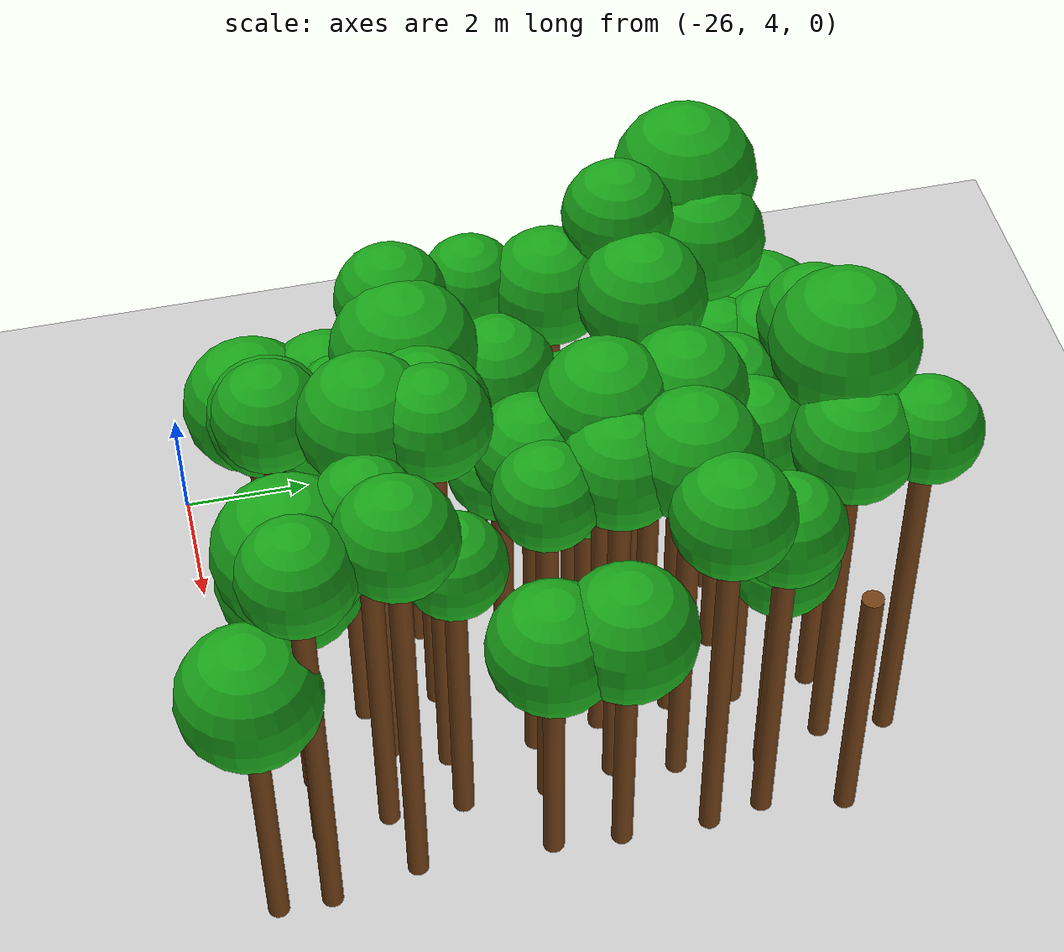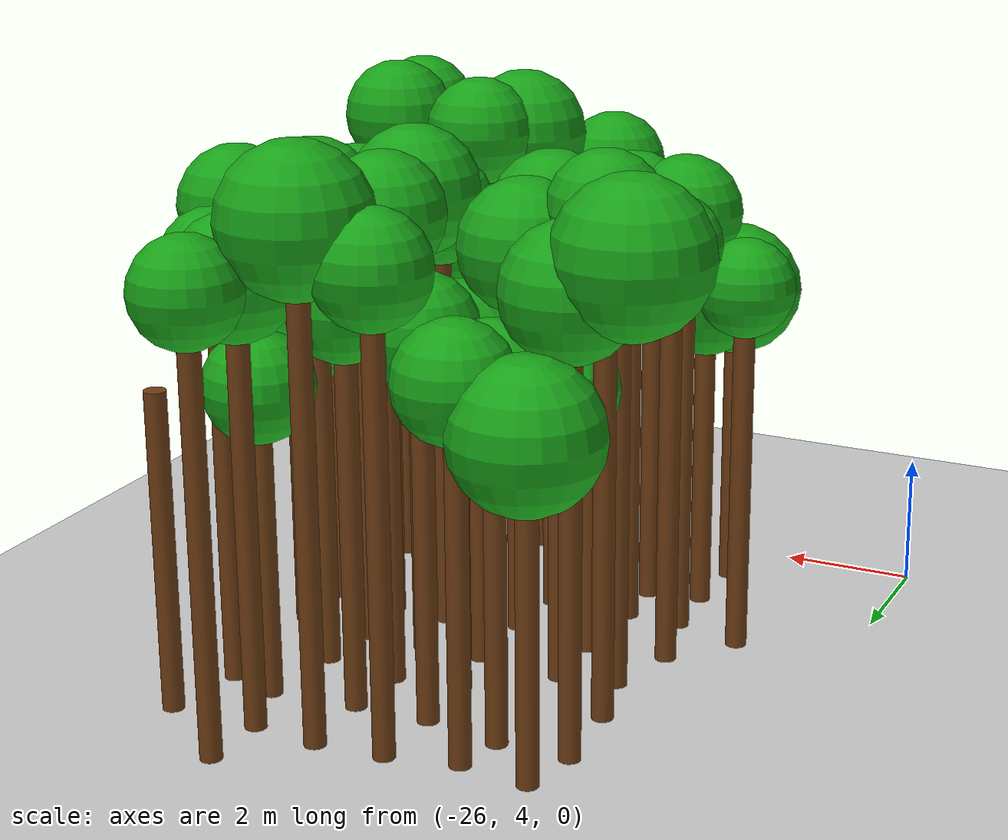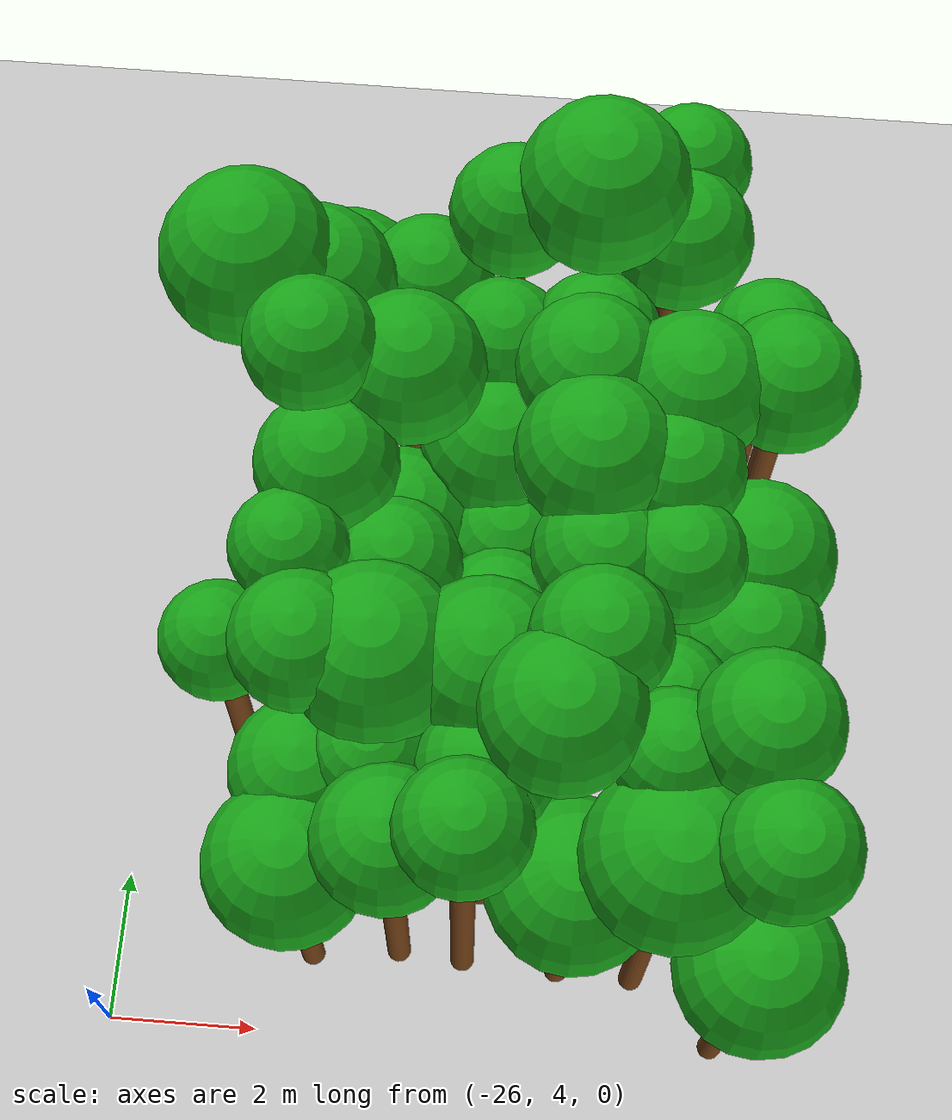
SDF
<sdf version="1.6">
 <world name="forest_world">
  <include><uri>model://sun</uri></include>
  <include><uri>model://ground_plane</uri></include>
  <model name="tree_309_trunk">
   <static>true</static>
   <pose>-24.34 7.55 2.59 0 0 0</pose>
   <link name="link">
    <collision name="collision">
     <geometry><cylinder><radius>0.16</radius><length>5.18</length></cylinder></geometry>
    </collision>
    <visual name="visual">
     <geometry><cylinder><radius>0.16</radius><length>5.18</length></cylinder></geometry>
     <material><ambient>0.35 0.20 0.05 1</ambient><diffuse>0.45 0.25 0.08 1</diffuse></material>
    </visual>
   </link>
  </model>
  <model name="tree_309_leaf">
   <static>true</static>
   <pose>-24.34 7.55 5.62 0 0 0</pose>
   <link name="link">
    <collision name="collision"><geometry><sphere><radius>0.73</radius></sphere></geometry></collision>
    <visual name="visual">
     <geometry><sphere><radius>0.73</radius></sphere></geometry>
     <material><ambient>0.05 0.45 0.05 1</ambient><diffuse>0.10 0.65 0.10 1</diffuse></material>
    </visual>
   </link>
  </model>
  <model name="tree_313_leaf">
   <static>true</static>
   <pose>-24.37 11.88 7.12 0 0 0</pose>
   <link name="link">
    <collision name="collision"><geometry><sphere><radius>1.08</radius></sphere></geometry></collision>
    <visual name="visual">
     <geometry><sphere><radius>1.08</radius></sphere></geometry>
     <material><ambient>0.05 0.45 0.05 1</ambient><diffuse>0.10 0.65 0.10 1</diffuse></material>
    </visual>
   </link>
  </model>
  <model name="tree_362_trunk">
   <static>true</static>
   <pose>-23.32 5.11 2.14 0 0 0</pose>
   <link name="link">
    <collision name="collision">
     <geometry><cylinder><radius>0.16</radius><length>4.27</length></cylinder></geometry>
    </collision>
    <visual name="visual">
     <geometry><cylinder><radius>0.16</radius><length>4.27</length></cylinder></geometry>
     <material><ambient>0.35 0.20 0.05 1</ambient><diffuse>0.45 0.25 0.08 1</diffuse></material>
    </visual>
   </link>
  </model>
  <model name="tree_362_leaf">
   <static>true</static>
   <pose>-23.32 5.11 4.88 0 0 0</pose>
   <link name="link">
    <collision name="collision"><geometry><sphere><radius>1.02</radius></sphere></geometry></collision>
    <visual name="visual">
     <geometry><sphere><radius>1.02</radius></sphere></geometry>
     <material><ambient>0.05 0.45 0.05 1</ambient><diffuse>0.10 0.65 0.10 1</diffuse></material>
    </visual>
   </link>
  </model>
  <model name="tree_363_trunk">
   <static>true</static>
   <pose>-23.24 6.21 2.24 0 0 0</pose>
   <link name="link">
    <collision name="collision">
     <geometry><cylinder><radius>0.16</radius><length>4.48</length></cylinder></geometry>
    </collision>
    <visual name="visual">
     <geometry><cylinder><radius>0.16</radius><length>4.48</length></cylinder></geometry>
     <material><ambient>0.35 0.20 0.05 1</ambient><diffuse>0.45 0.25 0.08 1</diffuse></material>
    </visual>
   </link>
  </model>
  <model name="tree_363_leaf">
   <static>true</static>
   <pose>-23.24 6.21 5.02 0 0 0</pose>
   <link name="link">
    <collision name="collision"><geometry><sphere><radius>0.90</radius></sphere></geometry></collision>
    <visual name="visual">
     <geometry><sphere><radius>0.90</radius></sphere></geometry>
     <material><ambient>0.05 0.45 0.05 1</ambient><diffuse>0.10 0.65 0.10 1</diffuse></material>
    </visual>
   </link>
  </model>
  <model name="tree_364_trunk">
   <static>true</static>
   <pose>-23.29 7.26 3.05 0 0 0</pose>
   <link name="link">
    <collision name="collision">
     <geometry><cylinder><radius>0.16</radius><length>6.10</length></cylinder></geometry>
    </collision>
    <visual name="visual">
     <geometry><cylinder><radius>0.16</radius><length>6.10</length></cylinder></geometry>
     <material><ambient>0.35 0.20 0.05 1</ambient><diffuse>0.45 0.25 0.08 1</diffuse></material>
    </visual>
   </link>
  </model>
  <model name="tree_364_leaf">
   <static>true</static>
   <pose>-23.29 7.26 6.59 0 0 0</pose>
   <link name="link">
    <collision name="collision"><geometry><sphere><radius>0.83</radius></sphere></geometry></collision>
    <visual name="visual">
     <geometry><sphere><radius>0.83</radius></sphere></geometry>
     <material><ambient>0.05 0.45 0.05 1</ambient><diffuse>0.10 0.65 0.10 1</diffuse></material>
    </visual>
   </link>
  </model>
  <model name="tree_365_trunk">
   <static>true</static>
   <pose>-23.56 8.47 2.99 0 0 0</pose>
   <link name="link">
    <collision name="collision">
     <geometry><cylinder><radius>0.16</radius><length>5.97</length></cylinder></geometry>
    </collision>
    <visual name="visual">
     <geometry><cylinder><radius>0.16</radius><length>5.97</length></cylinder></geometry>
     <material><ambient>0.35 0.20 0.05 1</ambient><diffuse>0.45 0.25 0.08 1</diffuse></material>
    </visual>
   </link>
  </model>
  <model name="tree_365_leaf">
   <static>true</static>
   <pose>-23.56 8.47 6.41 0 0 0</pose>
   <link name="link">
    <collision name="collision"><geometry><sphere><radius>0.72</radius></sphere></geometry></collision>
    <visual name="visual">
     <geometry><sphere><radius>0.72</radius></sphere></geometry>
     <material><ambient>0.05 0.45 0.05 1</ambient><diffuse>0.10 0.65 0.10 1</diffuse></material>
    </visual>
   </link>
  </model>
  <model name="tree_366_trunk">
   <static>true</static>
   <pose>-23.23 9.57 2.94 0 0 0</pose>
   <link name="link">
    <collision name="collision">
     <geometry><cylinder><radius>0.16</radius><length>5.88</length></cylinder></geometry>
    </collision>
    <visual name="visual">
     <geometry><cylinder><radius>0.16</radius><length>5.88</length></cylinder></geometry>
     <material><ambient>0.35 0.20 0.05 1</ambient><diffuse>0.45 0.25 0.08 1</diffuse></material>
    </visual>
   </link>
  </model>
  <model name="tree_366_leaf">
   <static>true</static>
   <pose>-23.23 9.57 6.41 0 0 0</pose>
   <link name="link">
    <collision name="collision"><geometry><sphere><radius>0.88</radius></sphere></geometry></collision>
    <visual name="visual">
     <geometry><sphere><radius>0.88</radius></sphere></geometry>
     <material><ambient>0.05 0.45 0.05 1</ambient><diffuse>0.10 0.65 0.10 1</diffuse></material>
    </visual>
   </link>
  </model>
  <model name="tree_367_trunk">
   <static>true</static>
   <pose>-23.47 10.63 3.44 0 0 0</pose>
   <link name="link">
    <collision name="collision">
     <geometry><cylinder><radius>0.16</radius><length>6.88</length></cylinder></geometry>
    </collision>
    <visual name="visual">
     <geometry><cylinder><radius>0.16</radius><length>6.88</length></cylinder></geometry>
     <material><ambient>0.35 0.20 0.05 1</ambient><diffuse>0.45 0.25 0.08 1</diffuse></material>
    </visual>
   </link>
  </model>
  <model name="tree_367_leaf">
   <static>true</static>
   <pose>-23.47 10.63 7.37 0 0 0</pose>
   <link name="link">
    <collision name="collision"><geometry><sphere><radius>0.81</radius></sphere></geometry></collision>
    <visual name="visual">
     <geometry><sphere><radius>0.81</radius></sphere></geometry>
     <material><ambient>0.05 0.45 0.05 1</ambient><diffuse>0.10 0.65 0.10 1</diffuse></material>
    </visual>
   </link>
  </model>
  <model name="tree_368_trunk">
   <static>true</static>
   <pose>-23.55 11.93 3.01 0 0 0</pose>
   <link name="link">
    <collision name="collision">
     <geometry><cylinder><radius>0.16</radius><length>6.02</length></cylinder></geometry>
    </collision>
    <visual name="visual">
     <geometry><cylinder><radius>0.16</radius><length>6.02</length></cylinder></geometry>
     <material><ambient>0.35 0.20 0.05 1</ambient><diffuse>0.45 0.25 0.08 1</diffuse></material>
    </visual>
   </link>
  </model>
  <model name="tree_368_leaf">
   <static>true</static>
   <pose>-23.55 11.93 6.59 0 0 0</pose>
   <link name="link">
    <collision name="collision"><geometry><sphere><radius>0.95</radius></sphere></geometry></collision>
    <visual name="visual">
     <geometry><sphere><radius>0.95</radius></sphere></geometry>
     <material><ambient>0.05 0.45 0.05 1</ambient><diffuse>0.10 0.65 0.10 1</diffuse></material>
    </visual>
   </link>
  </model>
  <model name="tree_369_trunk">
   <static>true</static>
   <pose>-23.35 12.83 2.14 0 0 0</pose>
   <link name="link">
    <collision name="collision">
     <geometry><cylinder><radius>0.16</radius><length>4.28</length></cylinder></geometry>
    </collision>
    <visual name="visual">
     <geometry><cylinder><radius>0.16</radius><length>4.28</length></cylinder></geometry>
     <material><ambient>0.35 0.20 0.05 1</ambient><diffuse>0.45 0.25 0.08 1</diffuse></material>
    </visual>
   </link>
  </model>
  <model name="tree_369_leaf">
   <static>true</static>
   <pose>-23.35 12.83 4.92 0 0 0</pose>
   <link name="link">
    <collision name="collision"><geometry><sphere><radius>1.06</radius></sphere></geometry></collision>
    <visual name="visual">
     <geometry><sphere><radius>1.06</radius></sphere></geometry>
     <material><ambient>0.05 0.45 0.05 1</ambient><diffuse>0.10 0.65 0.10 1</diffuse></material>
    </visual>
   </link>
  </model>
  <model name="tree_417_trunk">
   <static>true</static>
   <pose>-22.14 5.25 2.63 0 0 0</pose>
   <link name="link">
    <collision name="collision">
     <geometry><cylinder><radius>0.16</radius><length>5.26</length></cylinder></geometry>
    </collision>
    <visual name="visual">
     <geometry><cylinder><radius>0.16</radius><length>5.26</length></cylinder></geometry>
     <material><ambient>0.35 0.20 0.05 1</ambient><diffuse>0.45 0.25 0.08 1</diffuse></material>
    </visual>
   </link>
  </model>
  <model name="tree_417_leaf">
   <static>true</static>
   <pose>-22.14 5.25 5.79 0 0 0</pose>
   <link name="link">
    <collision name="collision"><geometry><sphere><radius>0.89</radius></sphere></geometry></collision>
    <visual name="visual">
     <geometry><sphere><radius>0.89</radius></sphere></geometry>
     <material><ambient>0.05 0.45 0.05 1</ambient><diffuse>0.10 0.65 0.10 1</diffuse></material>
    </visual>
   </link>
  </model>
  <model name="tree_418_trunk">
   <static>true</static>
   <pose>-22.42 6.35 2.55 0 0 0</pose>
   <link name="link">
    <collision name="collision">
     <geometry><cylinder><radius>0.16</radius><length>5.11</length></cylinder></geometry>
    </collision>
    <visual name="visual">
     <geometry><cylinder><radius>0.16</radius><length>5.11</length></cylinder></geometry>
     <material><ambient>0.35 0.20 0.05 1</ambient><diffuse>0.45 0.25 0.08 1</diffuse></material>
    </visual>
   </link>
  </model>
  <model name="tree_418_leaf">
   <static>true</static>
   <pose>-22.42 6.35 5.54 0 0 0</pose>
   <link name="link">
    <collision name="collision"><geometry><sphere><radius>0.72</radius></sphere></geometry></collision>
    <visual name="visual">
     <geometry><sphere><radius>0.72</radius></sphere></geometry>
     <material><ambient>0.05 0.45 0.05 1</ambient><diffuse>0.10 0.65 0.10 1</diffuse></material>
    </visual>
   </link>
  </model>
  <model name="tree_419_trunk">
   <static>true</static>
   <pose>-22.45 7.28 2.84 0 0 0</pose>
   <link name="link">
    <collision name="collision">
     <geometry><cylinder><radius>0.16</radius><length>5.67</length></cylinder></geometry>
    </collision>
    <visual name="visual">
     <geometry><cylinder><radius>0.16</radius><length>5.67</length></cylinder></geometry>
     <material><ambient>0.35 0.20 0.05 1</ambient><diffuse>0.45 0.25 0.08 1</diffuse></material>
    </visual>
   </link>
  </model>
  <model name="tree_419_leaf">
   <static>true</static>
   <pose>-22.45 7.28 6.32 0 0 0</pose>
   <link name="link">
    <collision name="collision"><geometry><sphere><radius>1.08</radius></sphere></geometry></collision>
    <visual name="visual">
     <geometry><sphere><radius>1.08</radius></sphere></geometry>
     <material><ambient>0.05 0.45 0.05 1</ambient><diffuse>0.10 0.65 0.10 1</diffuse></material>
    </visual>
   </link>
  </model>
  <model name="tree_420_trunk">
   <static>true</static>
   <pose>-22.36 8.62 2.62 0 0 0</pose>
   <link name="link">
    <collision name="collision">
     <geometry><cylinder><radius>0.16</radius><length>5.25</length></cylinder></geometry>
    </collision>
    <visual name="visual">
     <geometry><cylinder><radius>0.16</radius><length>5.25</length></cylinder></geometry>
     <material><ambient>0.35 0.20 0.05 1</ambient><diffuse>0.45 0.25 0.08 1</diffuse></material>
    </visual>
   </link>
  </model>
  <model name="tree_420_leaf">
   <static>true</static>
   <pose>-22.36 8.62 5.75 0 0 0</pose>
   <link name="link">
    <collision name="collision"><geometry><sphere><radius>0.83</radius></sphere></geometry></collision>
    <visual name="visual">
     <geometry><sphere><radius>0.83</radius></sphere></geometry>
     <material><ambient>0.05 0.45 0.05 1</ambient><diffuse>0.10 0.65 0.10 1</diffuse></material>
    </visual>
   </link>
  </model>
  <model name="tree_421_trunk">
   <static>true</static>
   <pose>-22.38 9.73 2.01 0 0 0</pose>
   <link name="link">
    <collision name="collision">
     <geometry><cylinder><radius>0.16</radius><length>4.01</length></cylinder></geometry>
    </collision>
    <visual name="visual">
     <geometry><cylinder><radius>0.16</radius><length>4.01</length></cylinder></geometry>
     <material><ambient>0.35 0.20 0.05 1</ambient><diffuse>0.45 0.25 0.08 1</diffuse></material>
    </visual>
   </link>
  </model>
  <model name="tree_421_leaf">
   <static>true</static>
   <pose>-22.38 9.73 4.58 0 0 0</pose>
   <link name="link">
    <collision name="collision"><geometry><sphere><radius>0.95</radius></sphere></geometry></collision>
    <visual name="visual">
     <geometry><sphere><radius>0.95</radius></sphere></geometry>
     <material><ambient>0.05 0.45 0.05 1</ambient><diffuse>0.10 0.65 0.10 1</diffuse></material>
    </visual>
   </link>
  </model>
  <model name="tree_422_trunk">
   <static>true</static>
   <pose>-22.35 10.73 3.11 0 0 0</pose>
   <link name="link">
    <collision name="collision">
     <geometry><cylinder><radius>0.16</radius><length>6.22</length></cylinder></geometry>
    </collision>
    <visual name="visual">
     <geometry><cylinder><radius>0.16</radius><length>6.22</length></cylinder></geometry>
     <material><ambient>0.35 0.20 0.05 1</ambient><diffuse>0.45 0.25 0.08 1</diffuse></material>
    </visual>
   </link>
  </model>
  <model name="tree_422_leaf">
   <static>true</static>
   <pose>-22.35 10.73 6.78 0 0 0</pose>
   <link name="link">
    <collision name="collision"><geometry><sphere><radius>0.94</radius></sphere></geometry></collision>
    <visual name="visual">
     <geometry><sphere><radius>0.94</radius></sphere></geometry>
     <material><ambient>0.05 0.45 0.05 1</ambient><diffuse>0.10 0.65 0.10 1</diffuse></material>
    </visual>
   </link>
  </model>
  <model name="tree_423_trunk">
   <static>true</static>
   <pose>-22.47 11.97 2.42 0 0 0</pose>
   <link name="link">
    <collision name="collision">
     <geometry><cylinder><radius>0.16</radius><length>4.83</length></cylinder></geometry>
    </collision>
    <visual name="visual">
     <geometry><cylinder><radius>0.16</radius><length>4.83</length></cylinder></geometry>
     <material><ambient>0.35 0.20 0.05 1</ambient><diffuse>0.45 0.25 0.08 1</diffuse></material>
    </visual>
   </link>
  </model>
  <model name="tree_423_leaf">
   <static>true</static>
   <pose>-22.47 11.97 5.31 0 0 0</pose>
   <link name="link">
    <collision name="collision"><geometry><sphere><radius>0.80</radius></sphere></geometry></collision>
    <visual name="visual">
     <geometry><sphere><radius>0.80</radius></sphere></geometry>
     <material><ambient>0.05 0.45 0.05 1</ambient><diffuse>0.10 0.65 0.10 1</diffuse></material>
    </visual>
   </link>
  </model>
  <model name="tree_424_trunk">
   <static>true</static>
   <pose>-22.29 12.72 2.47 0 0 0</pose>
   <link name="link">
    <collision name="collision">
     <geometry><cylinder><radius>0.16</radius><length>4.94</length></cylinder></geometry>
    </collision>
    <visual name="visual">
     <geometry><cylinder><radius>0.16</radius><length>4.94</length></cylinder></geometry>
     <material><ambient>0.35 0.20 0.05 1</ambient><diffuse>0.45 0.25 0.08 1</diffuse></material>
    </visual>
   </link>
  </model>
  <model name="tree_424_leaf">
   <static>true</static>
   <pose>-22.29 12.72 5.45 0 0 0</pose>
   <link name="link">
    <collision name="collision"><geometry><sphere><radius>0.85</radius></sphere></geometry></collision>
    <visual name="visual">
     <geometry><sphere><radius>0.85</radius></sphere></geometry>
     <material><ambient>0.05 0.45 0.05 1</ambient><diffuse>0.10 0.65 0.10 1</diffuse></material>
    </visual>
   </link>
  </model>
  <model name="tree_472_trunk">
   <static>true</static>
   <pose>-21.26 5.19 3.12 0 0 0</pose>
   <link name="link">
    <collision name="collision">
     <geometry><cylinder><radius>0.16</radius><length>6.24</length></cylinder></geometry>
    </collision>
    <visual name="visual">
     <geometry><cylinder><radius>0.16</radius><length>6.24</length></cylinder></geometry>
     <material><ambient>0.35 0.20 0.05 1</ambient><diffuse>0.45 0.25 0.08 1</diffuse></material>
    </visual>
   </link>
  </model>
  <model name="tree_472_leaf">
   <static>true</static>
   <pose>-21.26 5.19 6.72 0 0 0</pose>
   <link name="link">
    <collision name="collision"><geometry><sphere><radius>0.80</radius></sphere></geometry></collision>
    <visual name="visual">
     <geometry><sphere><radius>0.80</radius></sphere></geometry>
     <material><ambient>0.05 0.45 0.05 1</ambient><diffuse>0.10 0.65 0.10 1</diffuse></material>
    </visual>
   </link>
  </model>
  <model name="tree_473_trunk">
   <static>true</static>
   <pose>-21.08 6.14 2.68 0 0 0</pose>
   <link name="link">
    <collision name="collision">
     <geometry><cylinder><radius>0.16</radius><length>5.36</length></cylinder></geometry>
    </collision>
    <visual name="visual">
     <geometry><cylinder><radius>0.16</radius><length>5.36</length></cylinder></geometry>
     <material><ambient>0.35 0.20 0.05 1</ambient><diffuse>0.45 0.25 0.08 1</diffuse></material>
    </visual>
   </link>
  </model>
  <model name="tree_473_leaf">
   <static>true</static>
   <pose>-21.08 6.14 5.86 0 0 0</pose>
   <link name="link">
    <collision name="collision"><geometry><sphere><radius>0.83</radius></sphere></geometry></collision>
    <visual name="visual">
     <geometry><sphere><radius>0.83</radius></sphere></geometry>
     <material><ambient>0.05 0.45 0.05 1</ambient><diffuse>0.10 0.65 0.10 1</diffuse></material>
    </visual>
   </link>
  </model>
  <model name="tree_474_trunk">
   <static>true</static>
   <pose>-21.16 7.29 2.87 0 0 0</pose>
   <link name="link">
    <collision name="collision">
     <geometry><cylinder><radius>0.16</radius><length>5.75</length></cylinder></geometry>
    </collision>
    <visual name="visual">
     <geometry><cylinder><radius>0.16</radius><length>5.75</length></cylinder></geometry>
     <material><ambient>0.35 0.20 0.05 1</ambient><diffuse>0.45 0.25 0.08 1</diffuse></material>
    </visual>
   </link>
  </model>
  <model name="tree_474_leaf">
   <static>true</static>
   <pose>-21.16 7.29 6.34 0 0 0</pose>
   <link name="link">
    <collision name="collision"><geometry><sphere><radius>0.98</radius></sphere></geometry></collision>
    <visual name="visual">
     <geometry><sphere><radius>0.98</radius></sphere></geometry>
     <material><ambient>0.05 0.45 0.05 1</ambient><diffuse>0.10 0.65 0.10 1</diffuse></material>
    </visual>
   </link>
  </model>
  <model name="tree_475_trunk">
   <static>true</static>
   <pose>-21.07 8.37 2.32 0 0 0</pose>
   <link name="link">
    <collision name="collision">
     <geometry><cylinder><radius>0.16</radius><length>4.64</length></cylinder></geometry>
    </collision>
    <visual name="visual">
     <geometry><cylinder><radius>0.16</radius><length>4.64</length></cylinder></geometry>
     <material><ambient>0.35 0.20 0.05 1</ambient><diffuse>0.45 0.25 0.08 1</diffuse></material>
    </visual>
   </link>
  </model>
  <model name="tree_475_leaf">
   <static>true</static>
   <pose>-21.07 8.37 5.12 0 0 0</pose>
   <link name="link">
    <collision name="collision"><geometry><sphere><radius>0.79</radius></sphere></geometry></collision>
    <visual name="visual">
     <geometry><sphere><radius>0.79</radius></sphere></geometry>
     <material><ambient>0.05 0.45 0.05 1</ambient><diffuse>0.10 0.65 0.10 1</diffuse></material>
    </visual>
   </link>
  </model>
  <model name="tree_476_trunk">
   <static>true</static>
   <pose>-21.05 9.62 2.01 0 0 0</pose>
   <link name="link">
    <collision name="collision">
     <geometry><cylinder><radius>0.16</radius><length>4.01</length></cylinder></geometry>
    </collision>
    <visual name="visual">
     <geometry><cylinder><radius>0.16</radius><length>4.01</length></cylinder></geometry>
     <material><ambient>0.35 0.20 0.05 1</ambient><diffuse>0.45 0.25 0.08 1</diffuse></material>
    </visual>
   </link>
  </model>
  <model name="tree_476_leaf">
   <static>true</static>
   <pose>-21.05 9.62 4.52 0 0 0</pose>
   <link name="link">
    <collision name="collision"><geometry><sphere><radius>0.84</radius></sphere></geometry></collision>
    <visual name="visual">
     <geometry><sphere><radius>0.84</radius></sphere></geometry>
     <material><ambient>0.05 0.45 0.05 1</ambient><diffuse>0.10 0.65 0.10 1</diffuse></material>
    </visual>
   </link>
  </model>
  <model name="tree_477_trunk">
   <static>true</static>
   <pose>-21.23 10.64 2.27 0 0 0</pose>
   <link name="link">
    <collision name="collision">
     <geometry><cylinder><radius>0.16</radius><length>4.54</length></cylinder></geometry>
    </collision>
    <visual name="visual">
     <geometry><cylinder><radius>0.16</radius><length>4.54</length></cylinder></geometry>
     <material><ambient>0.35 0.20 0.05 1</ambient><diffuse>0.45 0.25 0.08 1</diffuse></material>
    </visual>
   </link>
  </model>
  <model name="tree_477_leaf">
   <static>true</static>
   <pose>-21.23 10.64 5.14 0 0 0</pose>
   <link name="link">
    <collision name="collision"><geometry><sphere><radius>1.01</radius></sphere></geometry></collision>
    <visual name="visual">
     <geometry><sphere><radius>1.01</radius></sphere></geometry>
     <material><ambient>0.05 0.45 0.05 1</ambient><diffuse>0.10 0.65 0.10 1</diffuse></material>
    </visual>
   </link>
  </model>
  <model name="tree_478_trunk">
   <static>true</static>
   <pose>-21.28 11.74 2.62 0 0 0</pose>
   <link name="link">
    <collision name="collision">
     <geometry><cylinder><radius>0.16</radius><length>5.25</length></cylinder></geometry>
    </collision>
    <visual name="visual">
     <geometry><cylinder><radius>0.16</radius><length>5.25</length></cylinder></geometry>
     <material><ambient>0.35 0.20 0.05 1</ambient><diffuse>0.45 0.25 0.08 1</diffuse></material>
    </visual>
   </link>
  </model>
  <model name="tree_478_leaf">
   <static>true</static>
   <pose>-21.28 11.74 5.74 0 0 0</pose>
   <link name="link">
    <collision name="collision"><geometry><sphere><radius>0.82</radius></sphere></geometry></collision>
    <visual name="visual">
     <geometry><sphere><radius>0.82</radius></sphere></geometry>
     <material><ambient>0.05 0.45 0.05 1</ambient><diffuse>0.10 0.65 0.10 1</diffuse></material>
    </visual>
   </link>
  </model>
  <model name="tree_479_trunk">
   <static>true</static>
   <pose>-21.24 12.94 3.19 0 0 0</pose>
   <link name="link">
    <collision name="collision">
     <geometry><cylinder><radius>0.16</radius><length>6.38</length></cylinder></geometry>
    </collision>
    <visual name="visual">
     <geometry><cylinder><radius>0.16</radius><length>6.38</length></cylinder></geometry>
     <material><ambient>0.35 0.20 0.05 1</ambient><diffuse>0.45 0.25 0.08 1</diffuse></material>
    </visual>
   </link>
  </model>
  <model name="tree_479_leaf">
   <static>true</static>
   <pose>-21.24 12.94 6.87 0 0 0</pose>
   <link name="link">
    <collision name="collision"><geometry><sphere><radius>0.82</radius></sphere></geometry></collision>
    <visual name="visual">
     <geometry><sphere><radius>0.82</radius></sphere></geometry>
     <material><ambient>0.05 0.45 0.05 1</ambient><diffuse>0.10 0.65 0.10 1</diffuse></material>
    </visual>
   </link>
  </model>
  <model name="tree_527_trunk">
   <static>true</static>
   <pose>-19.96 5.14 2.09 0 0 0</pose>
   <link name="link">
    <collision name="collision">
     <geometry><cylinder><radius>0.16</radius><length>4.18</length></cylinder></geometry>
    </collision>
    <visual name="visual">
     <geometry><cylinder><radius>0.16</radius><length>4.18</length></cylinder></geometry>
     <material><ambient>0.35 0.20 0.05 1</ambient><diffuse>0.45 0.25 0.08 1</diffuse></material>
    </visual>
   </link>
  </model>
  <model name="tree_527_leaf">
   <static>true</static>
   <pose>-19.96 5.14 4.82 0 0 0</pose>
   <link name="link">
    <collision name="collision"><geometry><sphere><radius>1.07</radius></sphere></geometry></collision>
    <visual name="visual">
     <geometry><sphere><radius>1.07</radius></sphere></geometry>
     <material><ambient>0.05 0.45 0.05 1</ambient><diffuse>0.10 0.65 0.10 1</diffuse></material>
    </visual>
   </link>
  </model>
  <model name="tree_528_trunk">
   <static>true</static>
   <pose>-20.27 6.40 3.39 0 0 0</pose>
   <link name="link">
    <collision name="collision">
     <geometry><cylinder><radius>0.16</radius><length>6.78</length></cylinder></geometry>
    </collision>
    <visual name="visual">
     <geometry><cylinder><radius>0.16</radius><length>6.78</length></cylinder></geometry>
     <material><ambient>0.35 0.20 0.05 1</ambient><diffuse>0.45 0.25 0.08 1</diffuse></material>
    </visual>
   </link>
  </model>
  <model name="tree_528_leaf">
   <static>true</static>
   <pose>-20.27 6.40 7.35 0 0 0</pose>
   <link name="link">
    <collision name="collision"><geometry><sphere><radius>0.95</radius></sphere></geometry></collision>
    <visual name="visual">
     <geometry><sphere><radius>0.95</radius></sphere></geometry>
     <material><ambient>0.05 0.45 0.05 1</ambient><diffuse>0.10 0.65 0.10 1</diffuse></material>
    </visual>
   </link>
  </model>
  <model name="tree_529_trunk">
   <static>true</static>
   <pose>-19.92 7.23 3.50 0 0 0</pose>
   <link name="link">
    <collision name="collision">
     <geometry><cylinder><radius>0.16</radius><length>6.99</length></cylinder></geometry>
    </collision>
    <visual name="visual">
     <geometry><cylinder><radius>0.16</radius><length>6.99</length></cylinder></geometry>
     <material><ambient>0.35 0.20 0.05 1</ambient><diffuse>0.45 0.25 0.08 1</diffuse></material>
    </visual>
   </link>
  </model>
  <model name="tree_529_leaf">
   <static>true</static>
   <pose>-19.92 7.23 7.48 0 0 0</pose>
   <link name="link">
    <collision name="collision"><geometry><sphere><radius>0.81</radius></sphere></geometry></collision>
    <visual name="visual">
     <geometry><sphere><radius>0.81</radius></sphere></geometry>
     <material><ambient>0.05 0.45 0.05 1</ambient><diffuse>0.10 0.65 0.10 1</diffuse></material>
    </visual>
   </link>
  </model>
  <model name="tree_530_trunk">
   <static>true</static>
   <pose>-19.93 8.59 3.04 0 0 0</pose>
   <link name="link">
    <collision name="collision">
     <geometry><cylinder><radius>0.16</radius><length>6.08</length></cylinder></geometry>
    </collision>
    <visual name="visual">
     <geometry><cylinder><radius>0.16</radius><length>6.08</length></cylinder></geometry>
     <material><ambient>0.35 0.20 0.05 1</ambient><diffuse>0.45 0.25 0.08 1</diffuse></material>
    </visual>
   </link>
  </model>
  <model name="tree_530_leaf">
   <static>true</static>
   <pose>-19.93 8.59 6.58 0 0 0</pose>
   <link name="link">
    <collision name="collision"><geometry><sphere><radius>0.83</radius></sphere></geometry></collision>
    <visual name="visual">
     <geometry><sphere><radius>0.83</radius></sphere></geometry>
     <material><ambient>0.05 0.45 0.05 1</ambient><diffuse>0.10 0.65 0.10 1</diffuse></material>
    </visual>
   </link>
  </model>
  <model name="tree_531_trunk">
   <static>true</static>
   <pose>-20.09 9.63 3.26 0 0 0</pose>
   <link name="link">
    <collision name="collision">
     <geometry><cylinder><radius>0.16</radius><length>6.52</length></cylinder></geometry>
    </collision>
    <visual name="visual">
     <geometry><cylinder><radius>0.16</radius><length>6.52</length></cylinder></geometry>
     <material><ambient>0.35 0.20 0.05 1</ambient><diffuse>0.45 0.25 0.08 1</diffuse></material>
    </visual>
   </link>
  </model>
  <model name="tree_531_leaf">
   <static>true</static>
   <pose>-20.09 9.63 7.09 0 0 0</pose>
   <link name="link">
    <collision name="collision"><geometry><sphere><radius>0.95</radius></sphere></geometry></collision>
    <visual name="visual">
     <geometry><sphere><radius>0.95</radius></sphere></geometry>
     <material><ambient>0.05 0.45 0.05 1</ambient><diffuse>0.10 0.65 0.10 1</diffuse></material>
    </visual>
   </link>
  </model>
  <model name="tree_532_trunk">
   <static>true</static>
   <pose>-20.21 10.77 3.24 0 0 0</pose>
   <link name="link">
    <collision name="collision">
     <geometry><cylinder><radius>0.16</radius><length>6.48</length></cylinder></geometry>
    </collision>
    <visual name="visual">
     <geometry><cylinder><radius>0.16</radius><length>6.48</length></cylinder></geometry>
     <material><ambient>0.35 0.20 0.05 1</ambient><diffuse>0.45 0.25 0.08 1</diffuse></material>
    </visual>
   </link>
  </model>
  <model name="tree_532_leaf">
   <static>true</static>
   <pose>-20.21 10.77 7.01 0 0 0</pose>
   <link name="link">
    <collision name="collision"><geometry><sphere><radius>0.89</radius></sphere></geometry></collision>
    <visual name="visual">
     <geometry><sphere><radius>0.89</radius></sphere></geometry>
     <material><ambient>0.05 0.45 0.05 1</ambient><diffuse>0.10 0.65 0.10 1</diffuse></material>
    </visual>
   </link>
  </model>
  <model name="tree_533_trunk">
   <static>true</static>
   <pose>-20.14 11.78 2.74 0 0 0</pose>
   <link name="link">
    <collision name="collision">
     <geometry><cylinder><radius>0.16</radius><length>5.49</length></cylinder></geometry>
    </collision>
    <visual name="visual">
     <geometry><cylinder><radius>0.16</radius><length>5.49</length></cylinder></geometry>
     <material><ambient>0.35 0.20 0.05 1</ambient><diffuse>0.45 0.25 0.08 1</diffuse></material>
    </visual>
   </link>
  </model>
  <model name="tree_533_leaf">
   <static>true</static>
   <pose>-20.14 11.78 5.98 0 0 0</pose>
   <link name="link">
    <collision name="collision"><geometry><sphere><radius>0.82</radius></sphere></geometry></collision>
    <visual name="visual">
     <geometry><sphere><radius>0.82</radius></sphere></geometry>
     <material><ambient>0.05 0.45 0.05 1</ambient><diffuse>0.10 0.65 0.10 1</diffuse></material>
    </visual>
   </link>
  </model>
  <model name="tree_534_trunk">
   <static>true</static>
   <pose>-20.20 13.02 3.39 0 0 0</pose>
   <link name="link">
    <collision name="collision">
     <geometry><cylinder><radius>0.16</radius><length>6.78</length></cylinder></geometry>
    </collision>
    <visual name="visual">
     <geometry><cylinder><radius>0.16</radius><length>6.78</length></cylinder></geometry>
     <material><ambient>0.35 0.20 0.05 1</ambient><diffuse>0.45 0.25 0.08 1</diffuse></material>
    </visual>
   </link>
  </model>
  <model name="tree_534_leaf">
   <static>true</static>
   <pose>-20.20 13.02 7.42 0 0 0</pose>
   <link name="link">
    <collision name="collision"><geometry><sphere><radius>1.06</radius></sphere></geometry></collision>
    <visual name="visual">
     <geometry><sphere><radius>1.06</radius></sphere></geometry>
     <material><ambient>0.05 0.45 0.05 1</ambient><diffuse>0.10 0.65 0.10 1</diffuse></material>
    </visual>
   </link>
  </model>
  <model name="tree_582_trunk">
   <static>true</static>
   <pose>-18.93 5.11 2.93 0 0 0</pose>
   <link name="link">
    <collision name="collision">
     <geometry><cylinder><radius>0.16</radius><length>5.86</length></cylinder></geometry>
    </collision>
    <visual name="visual">
     <geometry><cylinder><radius>0.16</radius><length>5.86</length></cylinder></geometry>
     <material><ambient>0.35 0.20 0.05 1</ambient><diffuse>0.45 0.25 0.08 1</diffuse></material>
    </visual>
   </link>
  </model>
  <model name="tree_582_leaf">
   <static>true</static>
   <pose>-18.93 5.11 6.51 0 0 0</pose>
   <link name="link">
    <collision name="collision"><geometry><sphere><radius>1.08</radius></sphere></geometry></collision>
    <visual name="visual">
     <geometry><sphere><radius>1.08</radius></sphere></geometry>
     <material><ambient>0.05 0.45 0.05 1</ambient><diffuse>0.10 0.65 0.10 1</diffuse></material>
    </visual>
   </link>
  </model>
  <model name="tree_583_trunk">
   <static>true</static>
   <pose>-19.05 6.14 3.30 0 0 0</pose>
   <link name="link">
    <collision name="collision">
     <geometry><cylinder><radius>0.16</radius><length>6.59</length></cylinder></geometry>
    </collision>
    <visual name="visual">
     <geometry><cylinder><radius>0.16</radius><length>6.59</length></cylinder></geometry>
     <material><ambient>0.35 0.20 0.05 1</ambient><diffuse>0.45 0.25 0.08 1</diffuse></material>
    </visual>
   </link>
  </model>
  <model name="tree_583_leaf">
   <static>true</static>
   <pose>-19.05 6.14 7.03 0 0 0</pose>
   <link name="link">
    <collision name="collision"><geometry><sphere><radius>0.72</radius></sphere></geometry></collision>
    <visual name="visual">
     <geometry><sphere><radius>0.72</radius></sphere></geometry>
     <material><ambient>0.05 0.45 0.05 1</ambient><diffuse>0.10 0.65 0.10 1</diffuse></material>
    </visual>
   </link>
  </model>
  <model name="tree_584_trunk">
   <static>true</static>
   <pose>-19.03 7.28 2.56 0 0 0</pose>
   <link name="link">
    <collision name="collision">
     <geometry><cylinder><radius>0.16</radius><length>5.11</length></cylinder></geometry>
    </collision>
    <visual name="visual">
     <geometry><cylinder><radius>0.16</radius><length>5.11</length></cylinder></geometry>
     <material><ambient>0.35 0.20 0.05 1</ambient><diffuse>0.45 0.25 0.08 1</diffuse></material>
    </visual>
   </link>
  </model>
  <model name="tree_584_leaf">
   <static>true</static>
   <pose>-19.03 7.28 5.57 0 0 0</pose>
   <link name="link">
    <collision name="collision"><geometry><sphere><radius>0.76</radius></sphere></geometry></collision>
    <visual name="visual">
     <geometry><sphere><radius>0.76</radius></sphere></geometry>
     <material><ambient>0.05 0.45 0.05 1</ambient><diffuse>0.10 0.65 0.10 1</diffuse></material>
    </visual>
   </link>
  </model>
  <model name="tree_585_trunk">
   <static>true</static>
   <pose>-19.02 8.58 3.11 0 0 0</pose>
   <link name="link">
    <collision name="collision">
     <geometry><cylinder><radius>0.16</radius><length>6.21</length></cylinder></geometry>
    </collision>
    <visual name="visual">
     <geometry><cylinder><radius>0.16</radius><length>6.21</length></cylinder></geometry>
     <material><ambient>0.35 0.20 0.05 1</ambient><diffuse>0.45 0.25 0.08 1</diffuse></material>
    </visual>
   </link>
  </model>
  <model name="tree_585_leaf">
   <static>true</static>
   <pose>-19.02 8.58 6.67 0 0 0</pose>
   <link name="link">
    <collision name="collision"><geometry><sphere><radius>0.76</radius></sphere></geometry></collision>
    <visual name="visual">
     <geometry><sphere><radius>0.76</radius></sphere></geometry>
     <material><ambient>0.05 0.45 0.05 1</ambient><diffuse>0.10 0.65 0.10 1</diffuse></material>
    </visual>
   </link>
  </model>
  <model name="tree_586_trunk">
   <static>true</static>
   <pose>-19.17 9.63 3.15 0 0 0</pose>
   <link name="link">
    <collision name="collision">
     <geometry><cylinder><radius>0.16</radius><length>6.29</length></cylinder></geometry>
    </collision>
    <visual name="visual">
     <geometry><cylinder><radius>0.16</radius><length>6.29</length></cylinder></geometry>
     <material><ambient>0.35 0.20 0.05 1</ambient><diffuse>0.45 0.25 0.08 1</diffuse></material>
    </visual>
   </link>
  </model>
  <model name="tree_586_leaf">
   <static>true</static>
   <pose>-19.17 9.63 6.81 0 0 0</pose>
   <link name="link">
    <collision name="collision"><geometry><sphere><radius>0.86</radius></sphere></geometry></collision>
    <visual name="visual">
     <geometry><sphere><radius>0.86</radius></sphere></geometry>
     <material><ambient>0.05 0.45 0.05 1</ambient><diffuse>0.10 0.65 0.10 1</diffuse></material>
    </visual>
   </link>
  </model>
  <model name="tree_587_trunk">
   <static>true</static>
   <pose>-19.01 10.59 3.23 0 0 0</pose>
   <link name="link">
    <collision name="collision">
     <geometry><cylinder><radius>0.16</radius><length>6.46</length></cylinder></geometry>
    </collision>
    <visual name="visual">
     <geometry><cylinder><radius>0.16</radius><length>6.46</length></cylinder></geometry>
     <material><ambient>0.35 0.20 0.05 1</ambient><diffuse>0.45 0.25 0.08 1</diffuse></material>
    </visual>
   </link>
  </model>
  <model name="tree_587_leaf">
   <static>true</static>
   <pose>-19.01 10.59 7.01 0 0 0</pose>
   <link name="link">
    <collision name="collision"><geometry><sphere><radius>0.93</radius></sphere></geometry></collision>
    <visual name="visual">
     <geometry><sphere><radius>0.93</radius></sphere></geometry>
     <material><ambient>0.05 0.45 0.05 1</ambient><diffuse>0.10 0.65 0.10 1</diffuse></material>
    </visual>
   </link>
  </model>
  <model name="tree_588_trunk">
   <static>true</static>
   <pose>-18.83 11.93 2.10 0 0 0</pose>
   <link name="link">
    <collision name="collision">
     <geometry><cylinder><radius>0.16</radius><length>4.19</length></cylinder></geometry>
    </collision>
    <visual name="visual">
     <geometry><cylinder><radius>0.16</radius><length>4.19</length></cylinder></geometry>
     <material><ambient>0.35 0.20 0.05 1</ambient><diffuse>0.45 0.25 0.08 1</diffuse></material>
    </visual>
   </link>
  </model>
  <model name="tree_588_leaf">
   <static>true</static>
   <pose>-18.83 11.93 4.68 0 0 0</pose>
   <link name="link">
    <collision name="collision"><geometry><sphere><radius>0.81</radius></sphere></geometry></collision>
    <visual name="visual">
     <geometry><sphere><radius>0.81</radius></sphere></geometry>
     <material><ambient>0.05 0.45 0.05 1</ambient><diffuse>0.10 0.65 0.10 1</diffuse></material>
    </visual>
   </link>
  </model>
  <model name="tree_589_trunk">
   <static>true</static>
   <pose>-19.18 12.92 3.00 0 0 0</pose>
   <link name="link">
    <collision name="collision">
     <geometry><cylinder><radius>0.16</radius><length>5.99</length></cylinder></geometry>
    </collision>
    <visual name="visual">
     <geometry><cylinder><radius>0.16</radius><length>5.99</length></cylinder></geometry>
     <material><ambient>0.35 0.20 0.05 1</ambient><diffuse>0.45 0.25 0.08 1</diffuse></material>
    </visual>
   </link>
  </model>
  <model name="tree_589_leaf">
   <static>true</static>
   <pose>-19.18 12.92 6.53 0 0 0</pose>
   <link name="link">
    <collision name="collision"><geometry><sphere><radius>0.89</radius></sphere></geometry></collision>
    <visual name="visual">
     <geometry><sphere><radius>0.89</radius></sphere></geometry>
     <material><ambient>0.05 0.45 0.05 1</ambient><diffuse>0.10 0.65 0.10 1</diffuse></material>
    </visual>
   </link>
  </model>
  <model name="tree_590_trunk">
   <static>true</static>
   <pose>-19.12 13.95 3.06 0 0 0</pose>
   <link name="link">
    <collision name="collision">
     <geometry><cylinder><radius>0.16</radius><length>6.12</length></cylinder></geometry>
    </collision>
    <visual name="visual">
     <geometry><cylinder><radius>0.16</radius><length>6.12</length></cylinder></geometry>
     <material><ambient>0.35 0.20 0.05 1</ambient><diffuse>0.45 0.25 0.08 1</diffuse></material>
    </visual>
   </link>
  </model>
  <model name="tree_590_leaf">
   <static>true</static>
   <pose>-19.12 13.95 6.58 0 0 0</pose>
   <link name="link">
    <collision name="collision"><geometry><sphere><radius>0.77</radius></sphere></geometry></collision>
    <visual name="visual">
     <geometry><sphere><radius>0.77</radius></sphere></geometry>
     <material><ambient>0.05 0.45 0.05 1</ambient><diffuse>0.10 0.65 0.10 1</diffuse></material>
    </visual>
   </link>
  </model>
  <model name="tree_636_trunk">
   <static>true</static>
   <pose>-17.81 4.26 2.24 0 0 0</pose>
   <link name="link">
    <collision name="collision">
     <geometry><cylinder><radius>0.16</radius><length>4.48</length></cylinder></geometry>
    </collision>
    <visual name="visual">
     <geometry><cylinder><radius>0.16</radius><length>4.48</length></cylinder></geometry>
     <material><ambient>0.35 0.20 0.05 1</ambient><diffuse>0.45 0.25 0.08 1</diffuse></material>
    </visual>
   </link>
  </model>
  <model name="tree_636_leaf">
   <static>true</static>
   <pose>-17.81 4.26 5.08 0 0 0</pose>
   <link name="link">
    <collision name="collision"><geometry><sphere><radius>1.01</radius></sphere></geometry></collision>
    <visual name="visual">
     <geometry><sphere><radius>1.01</radius></sphere></geometry>
     <material><ambient>0.05 0.45 0.05 1</ambient><diffuse>0.10 0.65 0.10 1</diffuse></material>
    </visual>
   </link>
  </model>
  <model name="tree_637_trunk">
   <static>true</static>
   <pose>-17.81 5.06 3.43 0 0 0</pose>
   <link name="link">
    <collision name="collision">
     <geometry><cylinder><radius>0.16</radius><length>6.86</length></cylinder></geometry>
    </collision>
    <visual name="visual">
     <geometry><cylinder><radius>0.16</radius><length>6.86</length></cylinder></geometry>
     <material><ambient>0.35 0.20 0.05 1</ambient><diffuse>0.45 0.25 0.08 1</diffuse></material>
    </visual>
   </link>
  </model>
  <model name="tree_637_leaf">
   <static>true</static>
   <pose>-17.81 5.06 7.34 0 0 0</pose>
   <link name="link">
    <collision name="collision"><geometry><sphere><radius>0.80</radius></sphere></geometry></collision>
    <visual name="visual">
     <geometry><sphere><radius>0.80</radius></sphere></geometry>
     <material><ambient>0.05 0.45 0.05 1</ambient><diffuse>0.10 0.65 0.10 1</diffuse></material>
    </visual>
   </link>
  </model>
  <model name="tree_638_trunk">
   <static>true</static>
   <pose>-18.07 6.39 3.47 0 0 0</pose>
   <link name="link">
    <collision name="collision">
     <geometry><cylinder><radius>0.16</radius><length>6.94</length></cylinder></geometry>
    </collision>
    <visual name="visual">
     <geometry><cylinder><radius>0.16</radius><length>6.94</length></cylinder></geometry>
     <material><ambient>0.35 0.20 0.05 1</ambient><diffuse>0.45 0.25 0.08 1</diffuse></material>
    </visual>
   </link>
  </model>
  <model name="tree_638_leaf">
   <static>true</static>
   <pose>-18.07 6.39 7.45 0 0 0</pose>
   <link name="link">
    <collision name="collision"><geometry><sphere><radius>0.84</radius></sphere></geometry></collision>
    <visual name="visual">
     <geometry><sphere><radius>0.84</radius></sphere></geometry>
     <material><ambient>0.05 0.45 0.05 1</ambient><diffuse>0.10 0.65 0.10 1</diffuse></material>
    </visual>
   </link>
  </model>
  <model name="tree_640_trunk">
   <static>true</static>
   <pose>-18.01 8.44 2.06 0 0 0</pose>
   <link name="link">
    <collision name="collision">
     <geometry><cylinder><radius>0.16</radius><length>4.12</length></cylinder></geometry>
    </collision>
    <visual name="visual">
     <geometry><cylinder><radius>0.16</radius><length>4.12</length></cylinder></geometry>
     <material><ambient>0.35 0.20 0.05 1</ambient><diffuse>0.45 0.25 0.08 1</diffuse></material>
    </visual>
   </link>
  </model>
  <model name="tree_640_leaf">
   <static>true</static>
   <pose>-18.01 8.44 4.70 0 0 0</pose>
   <link name="link">
    <collision name="collision"><geometry><sphere><radius>0.96</radius></sphere></geometry></collision>
    <visual name="visual">
     <geometry><sphere><radius>0.96</radius></sphere></geometry>
     <material><ambient>0.05 0.45 0.05 1</ambient><diffuse>0.10 0.65 0.10 1</diffuse></material>
    </visual>
   </link>
  </model>
  <model name="tree_641_trunk">
   <static>true</static>
   <pose>-17.93 9.47 2.12 0 0 0</pose>
   <link name="link">
    <collision name="collision">
     <geometry><cylinder><radius>0.16</radius><length>4.24</length></cylinder></geometry>
    </collision>
    <visual name="visual">
     <geometry><cylinder><radius>0.16</radius><length>4.24</length></cylinder></geometry>
     <material><ambient>0.35 0.20 0.05 1</ambient><diffuse>0.45 0.25 0.08 1</diffuse></material>
    </visual>
   </link>
  </model>
  <model name="tree_641_leaf">
   <static>true</static>
   <pose>-17.93 9.47 4.84 0 0 0</pose>
   <link name="link">
    <collision name="collision"><geometry><sphere><radius>0.99</radius></sphere></geometry></collision>
    <visual name="visual">
     <geometry><sphere><radius>0.99</radius></sphere></geometry>
     <material><ambient>0.05 0.45 0.05 1</ambient><diffuse>0.10 0.65 0.10 1</diffuse></material>
    </visual>
   </link>
  </model>
  <model name="tree_642_trunk">
   <static>true</static>
   <pose>-17.90 10.82 3.21 0 0 0</pose>
   <link name="link">
    <collision name="collision">
     <geometry><cylinder><radius>0.16</radius><length>6.42</length></cylinder></geometry>
    </collision>
    <visual name="visual">
     <geometry><cylinder><radius>0.16</radius><length>6.42</length></cylinder></geometry>
     <material><ambient>0.35 0.20 0.05 1</ambient><diffuse>0.45 0.25 0.08 1</diffuse></material>
    </visual>
   </link>
  </model>
  <model name="tree_642_leaf">
   <static>true</static>
   <pose>-17.90 10.82 6.93 0 0 0</pose>
   <link name="link">
    <collision name="collision"><geometry><sphere><radius>0.86</radius></sphere></geometry></collision>
    <visual name="visual">
     <geometry><sphere><radius>0.86</radius></sphere></geometry>
     <material><ambient>0.05 0.45 0.05 1</ambient><diffuse>0.10 0.65 0.10 1</diffuse></material>
    </visual>
   </link>
  </model>
  <model name="tree_643_trunk">
   <static>true</static>
   <pose>-18.04 11.67 2.90 0 0 0</pose>
   <link name="link">
    <collision name="collision">
     <geometry><cylinder><radius>0.16</radius><length>5.81</length></cylinder></geometry>
    </collision>
    <visual name="visual">
     <geometry><cylinder><radius>0.16</radius><length>5.81</length></cylinder></geometry>
     <material><ambient>0.35 0.20 0.05 1</ambient><diffuse>0.45 0.25 0.08 1</diffuse></material>
    </visual>
   </link>
  </model>
  <model name="tree_643_leaf">
   <static>true</static>
   <pose>-18.04 11.67 6.29 0 0 0</pose>
   <link name="link">
    <collision name="collision"><geometry><sphere><radius>0.80</radius></sphere></geometry></collision>
    <visual name="visual">
     <geometry><sphere><radius>0.80</radius></sphere></geometry>
     <material><ambient>0.05 0.45 0.05 1</ambient><diffuse>0.10 0.65 0.10 1</diffuse></material>
    </visual>
   </link>
  </model>
  <model name="tree_644_trunk">
   <static>true</static>
   <pose>-17.80 12.91 2.39 0 0 0</pose>
   <link name="link">
    <collision name="collision">
     <geometry><cylinder><radius>0.16</radius><length>4.77</length></cylinder></geometry>
    </collision>
    <visual name="visual">
     <geometry><cylinder><radius>0.16</radius><length>4.77</length></cylinder></geometry>
     <material><ambient>0.35 0.20 0.05 1</ambient><diffuse>0.45 0.25 0.08 1</diffuse></material>
    </visual>
   </link>
  </model>
 </world>
</sdf>
